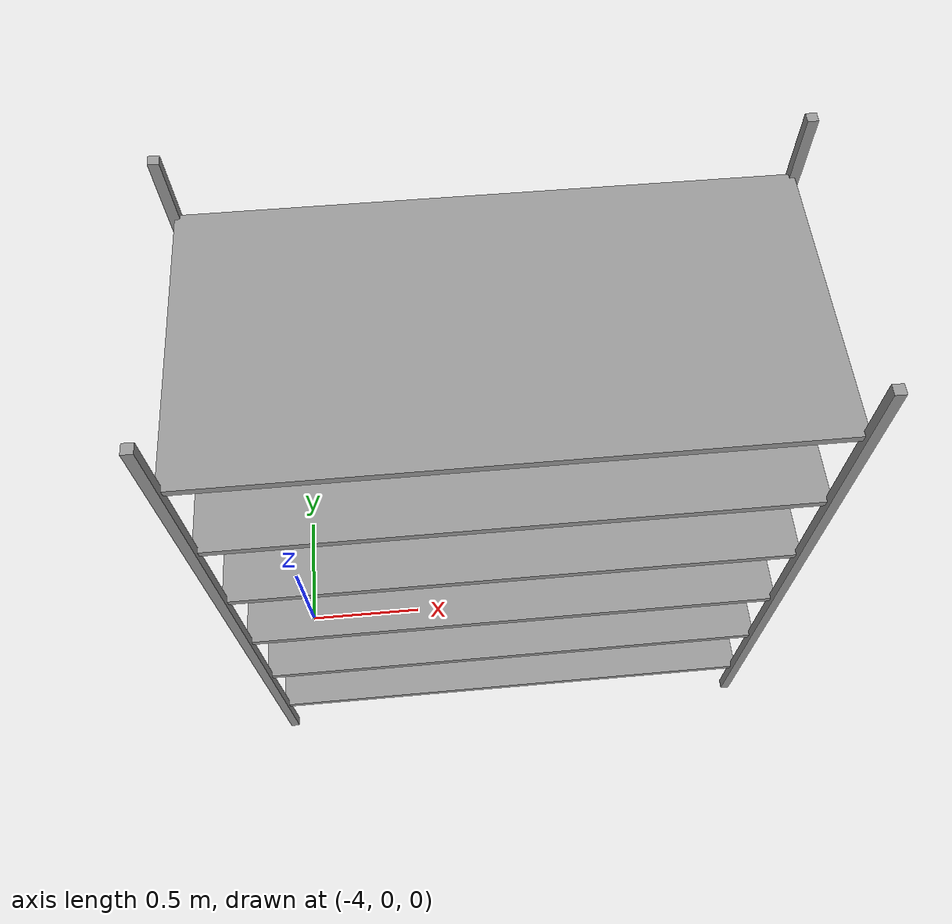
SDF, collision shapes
<sdf version="1.6">
 <model name="shelves">
  <model name="shelf_0">
   <link name="link_1">
    <inertial>
     <mass>1</mass>
     <inertia>
      <ixx>0.166667</ixx>
      <ixy>0</ixy>
      <ixz>0</ixz>
      <iyy>0.166667</iyy>
      <iyz>0</iyz>
      <izz>0.166667</izz>
     </inertia>
    </inertial>
    <visual name="ModelPreview_2::link_1::visual_6">
     <pose>1 0.5 0 0 -0 0</pose>
     <geometry><mesh><uri>model://shelf/model/2-5mDirek.stl</uri><scale>0.001 0.001 0.001</scale></mesh></geometry>
     <material>
      <lighting>1</lighting>
      <script><uri>file://media/materials/scripts/gazebo.material</uri><name>Gazebo/Grey</name></script>
      <shader type="vertex"><normal_map>__default__</normal_map></shader>
      <ambient>0.3 0.3 0.3 1</ambient>
      <diffuse>0.7 0.7 0.7 1</diffuse>
      <specular>0.01 0.01 0.01 1</specular>
      <emissive>0 0 0 1</emissive>
     </material>
    </visual>
    <visual name="ModelPreview_2::link_1::visual_7">
     <pose>-1 0.5 0 0 -0 0</pose>
     <geometry><mesh><uri>model://shelf/model/2-5mDirek.stl</uri><scale>0.001 0.001 0.001</scale></mesh></geometry>
     <material>
      <lighting>1</lighting>
      <script><uri>file://media/materials/scripts/gazebo.material</uri><name>Gazebo/Grey</name></script>
      <shader type="vertex"><normal_map>__default__</normal_map></shader>
      <ambient>0.3 0.3 0.3 1</ambient>
      <diffuse>0.7 0.7 0.7 1</diffuse>
      <specular>0.01 0.01 0.01 1</specular>
      <emissive>0 0 0 1</emissive>
     </material>
    </visual>
    <visual name="ModelPreview_2::link_1::visual_4">
     <pose>0 0 1.85 0 -0 0</pose>
     <geometry><box><size>2 1 0.025</size></box></geometry>
     <material>
      <lighting>1</lighting>
      <script><uri>file://media/materials/scripts/gazebo.material</uri><name>Gazebo/WoodFloor</name></script>
      <shader type="vertex"><normal_map>__default__</normal_map></shader>
      <ambient>0.3 0.3 0.3 1</ambient>
      <diffuse>0.7 0.7 0.7 1</diffuse>
      <specular>0.01 0.01 0.01 1</specular>
      <emissive>0 0 0 1</emissive>
     </material>
    </visual>
    <visual name="ModelPreview_2::link_1::visual_5">
     <pose>0 0 2.25 0 -0 0</pose>
     <geometry><box><size>2 1 0.025</size></box></geometry>
     <material>
      <lighting>1</lighting>
      <script><uri>file://media/materials/scripts/gazebo.material</uri><name>Gazebo/WoodFloor</name></script>
      <shader type="vertex"><normal_map>__default__</normal_map></shader>
      <ambient>0.3 0.3 0.3 1</ambient>
      <diffuse>0.7 0.7 0.7 1</diffuse>
      <specular>0.01 0.01 0.01 1</specular>
      <emissive>0 0 0 1</emissive>
     </material>
    </visual>
    <visual name="ModelPreview_2::link_1::visual_3">
     <pose>0 0 1.45 0 -0 0</pose>
     <geometry><box><size>2 1 0.025</size></box></geometry>
     <material>
      <lighting>1</lighting>
      <script><uri>file://media/materials/scripts/gazebo.material</uri><name>Gazebo/WoodFloor</name></script>
      <shader type="vertex"><normal_map>__default__</normal_map></shader>
      <ambient>0.3 0.3 0.3 1</ambient>
      <diffuse>0.7 0.7 0.7 1</diffuse>
      <specular>0.01 0.01 0.01 1</specular>
      <emissive>0 0 0 1</emissive>
     </material>
    </visual>
    <visual name="ModelPreview_2::link_1::visual_1">
     <pose>0 0 0.65 0 -0 0</pose>
     <geometry><box><size>2 1 0.025</size></box></geometry>
     <material>
      <lighting>1</lighting>
      <script><uri>file://media/materials/scripts/gazebo.material</uri><name>Gazebo/WoodFloor</name></script>
      <shader type="vertex"><normal_map>__default__</normal_map></shader>
      <ambient>0.3 0.3 0.3 1</ambient>
      <diffuse>0.7 0.7 0.7 1</diffuse>
      <specular>0.01 0.01 0.01 1</specular>
      <emissive>0 0 0 1</emissive>
     </material>
    </visual>
    <visual name="visual">
     <pose>0 0 0.25 0 -0 0</pose>
     <geometry><box><size>2 1 0.025</size></box></geometry>
     <material>
      <lighting>1</lighting>
      <script><uri>file://media/materials/scripts/gazebo.material</uri><name>Gazebo/WoodFloor</name></script>
      <shader type="vertex"><normal_map>__default__</normal_map></shader>
      <ambient>0.3 0.3 0.3 1</ambient>
      <diffuse>0.7 0.7 0.7 1</diffuse>
      <specular>0.01 0.01 0.01 1</specular>
      <emissive>0 0 0 1</emissive>
     </material>
    </visual>
    <visual name="ModelPreview_2::link_1::visual_2">
     <pose>0 0 1.05 0 -0 0</pose>
     <geometry><box><size>2 1 0.025</size></box></geometry>
     <material>
      <lighting>1</lighting>
      <script><uri>file://media/materials/scripts/gazebo.material</uri><name>Gazebo/WoodFloor</name></script>
      <shader type="vertex"><normal_map>__default__</normal_map></shader>
      <ambient>0.3 0.3 0.3 1</ambient>
      <diffuse>0.7 0.7 0.7 1</diffuse>
      <specular>0.01 0.01 0.01 1</specular>
      <emissive>0 0 0 1</emissive>
     </material>
    </visual>
    <visual name="ModelPreview_2::link_1::visual_8">
     <pose>1 -0.5 0 0 -0 0</pose>
     <geometry><mesh><uri>model://shelf/model/2-5mDirek.stl</uri><scale>0.001 0.001 0.001</scale></mesh></geometry>
     <material>
      <lighting>1</lighting>
      <script><uri>file://media/materials/scripts/gazebo.material</uri><name>Gazebo/Grey</name></script>
      <shader type="vertex"><normal_map>__default__</normal_map></shader>
      <ambient>0.3 0.3 0.3 1</ambient>
      <diffuse>0.7 0.7 0.7 1</diffuse>
      <specular>0.01 0.01 0.01 1</specular>
      <emissive>0 0 0 1</emissive>
     </material>
    </visual>
    <visual name="ModelPreview_2::link_1::visual_9">
     <pose>-1 -0.5 0 0 -0 0</pose>
     <geometry><mesh><uri>model://shelf/model/2-5mDirek.stl</uri><scale>0.001 0.001 0.001</scale></mesh></geometry>
     <material>
      <lighting>1</lighting>
      <script><uri>file://media/materials/scripts/gazebo.material</uri><name>Gazebo/Grey</name></script>
      <shader type="vertex"><normal_map>__default__</normal_map></shader>
      <ambient>0.3 0.3 0.3 1</ambient>
      <diffuse>0.7 0.7 0.7 1</diffuse>
      <specular>0.01 0.01 0.01 1</specular>
      <emissive>0 0 0 1</emissive>
     </material>
    </visual>
    <collision name="collision_7">
     <pose>1 -0.5 1.25 0 -0 0</pose>
     <geometry><box><size>0.035 0.035 2.5</size></box></geometry>
     <surface>
      <friction>
       <ode><mu>1</mu><mu2>1</mu2><fdir1>0 0 0</fdir1><slip1>0</slip1><slip2>0</slip2></ode>
       <torsional>
        <coefficient>1</coefficient>
        <patch_radius>0</patch_radius>
        <surface_radius>0</surface_radius>
        <use_patch_radius>1</use_patch_radius>
        <ode><slip>0</slip></ode>
       </torsional>
      </friction>
      <bounce><restitution_coefficient>0</restitution_coefficient><threshold>1e+06</threshold></bounce>
      <contact>
       <collide_without_contact>0</collide_without_contact>
       <collide_without_contact_bitmask>1</collide_without_contact_bitmask>
       <collide_bitmask>1</collide_bitmask>
       <ode>
        <soft_cfm>0</soft_cfm>
        <soft_erp>0.2</soft_erp>
        <kp>1e+13</kp>
        <kd>1</kd>
        <max_vel>0.01</max_vel>
        <min_depth>0</min_depth>
       </ode>
       <bullet>
        <split_impulse>1</split_impulse>
        <split_impulse_penetration_threshold>-0.01</split_impulse_penetration_threshold>
        <soft_cfm>0</soft_cfm>
        <soft_erp>0.2</soft_erp>
        <kp>1e+13</kp>
        <kd>1</kd>
       </bullet>
      </contact>
     </surface>
    </collision>
    <collision name="collision_6">
     <pose>1 0.5 1.25 0 -0 0</pose>
     <geometry><box><size>0.035 0.035 2.5</size></box></geometry>
     <surface>
      <friction>
       <ode><mu>1</mu><mu2>1</mu2><fdir1>0 0 0</fdir1><slip1>0</slip1><slip2>0</slip2></ode>
       <torsional>
        <coefficient>1</coefficient>
        <patch_radius>0</patch_radius>
        <surface_radius>0</surface_radius>
        <use_patch_radius>1</use_patch_radius>
        <ode><slip>0</slip></ode>
       </torsional>
      </friction>
      <bounce><restitution_coefficient>0</restitution_coefficient><threshold>1e+06</threshold></bounce>
      <contact>
       <collide_without_contact>0</collide_without_contact>
       <collide_without_contact_bitmask>1</collide_without_contact_bitmask>
       <collide_bitmask>1</collide_bitmask>
       <ode>
        <soft_cfm>0</soft_cfm>
        <soft_erp>0.2</soft_erp>
        <kp>1e+13</kp>
        <kd>1</kd>
        <max_vel>0.01</max_vel>
        <min_depth>0</min_depth>
       </ode>
       <bullet>
        <split_impulse>1</split_impulse>
        <split_impulse_penetration_threshold>-0.01</split_impulse_penetration_threshold>
        <soft_cfm>0</soft_cfm>
        <soft_erp>0.2</soft_erp>
        <kp>1e+13</kp>
        <kd>1</kd>
       </bullet>
      </contact>
     </surface>
    </collision>
    <collision name="collision_2">
     <pose>0 0 1.05 0 -0 0</pose>
     <geometry><box><size>2 1 0.025</size></box></geometry>
     <surface>
      <friction>
       <ode><mu>1</mu><mu2>1</mu2><fdir1>0 0 0</fdir1><slip1>0</slip1><slip2>0</slip2></ode>
       <torsional>
        <coefficient>1</coefficient>
        <patch_radius>0</patch_radius>
        <surface_radius>0</surface_radius>
        <use_patch_radius>1</use_patch_radius>
        <ode><slip>0</slip></ode>
       </torsional>
      </friction>
      <bounce><restitution_coefficient>0</restitution_coefficient><threshold>1e+06</threshold></bounce>
      <contact>
       <collide_without_contact>0</collide_without_contact>
       <collide_without_contact_bitmask>1</collide_without_contact_bitmask>
       <collide_bitmask>1</collide_bitmask>
       <ode>
        <soft_cfm>0</soft_cfm>
        <soft_erp>0.2</soft_erp>
        <kp>1e+13</kp>
        <kd>1</kd>
        <max_vel>0.01</max_vel>
        <min_depth>0</min_depth>
       </ode>
       <bullet>
        <split_impulse>1</split_impulse>
        <split_impulse_penetration_threshold>-0.01</split_impulse_penetration_threshold>
        <soft_cfm>0</soft_cfm>
        <soft_erp>0.2</soft_erp>
        <kp>1e+13</kp>
        <kd>1</kd>
       </bullet>
      </contact>
     </surface>
    </collision>
    <collision name="collision_8">
     <pose>-1 0.5 1.25 0 -0 0</pose>
     <geometry><box><size>0.035 0.035 2.5</size></box></geometry>
     <surface>
      <friction>
       <ode><mu>1</mu><mu2>1</mu2><fdir1>0 0 0</fdir1><slip1>0</slip1><slip2>0</slip2></ode>
       <torsional>
        <coefficient>1</coefficient>
        <patch_radius>0</patch_radius>
        <surface_radius>0</surface_radius>
        <use_patch_radius>1</use_patch_radius>
        <ode><slip>0</slip></ode>
       </torsional>
      </friction>
      <bounce><restitution_coefficient>0</restitution_coefficient><threshold>1e+06</threshold></bounce>
      <contact>
       <collide_without_contact>0</collide_without_contact>
       <collide_without_contact_bitmask>1</collide_without_contact_bitmask>
       <collide_bitmask>1</collide_bitmask>
       <ode>
        <soft_cfm>0</soft_cfm>
        <soft_erp>0.2</soft_erp>
        <kp>1e+13</kp>
        <kd>1</kd>
        <max_vel>0.01</max_vel>
        <min_depth>0</min_depth>
       </ode>
       <bullet>
        <split_impulse>1</split_impulse>
        <split_impulse_penetration_threshold>-0.01</split_impulse_penetration_threshold>
        <soft_cfm>0</soft_cfm>
        <soft_erp>0.2</soft_erp>
        <kp>1e+13</kp>
        <kd>1</kd>
       </bullet>
      </contact>
     </surface>
    </collision>
    <collision name="collision_4">
     <pose>0 0 1.85 0 -0 0</pose>
     <geometry><box><size>2 1 0.025</size></box></geometry>
     <surface>
      <friction>
       <ode><mu>1</mu><mu2>1</mu2><fdir1>0 0 0</fdir1><slip1>0</slip1><slip2>0</slip2></ode>
       <torsional>
        <coefficient>1</coefficient>
        <patch_radius>0</patch_radius>
        <surface_radius>0</surface_radius>
        <use_patch_radius>1</use_patch_radius>
        <ode><slip>0</slip></ode>
       </torsional>
      </friction>
      <bounce><restitution_coefficient>0</restitution_coefficient><threshold>1e+06</threshold></bounce>
      <contact>
       <collide_without_contact>0</collide_without_contact>
       <collide_without_contact_bitmask>1</collide_without_contact_bitmask>
       <collide_bitmask>1</collide_bitmask>
       <ode>
        <soft_cfm>0</soft_cfm>
        <soft_erp>0.2</soft_erp>
        <kp>1e+13</kp>
        <kd>1</kd>
        <max_vel>0.01</max_vel>
        <min_depth>0</min_depth>
       </ode>
       <bullet>
        <split_impulse>1</split_impulse>
        <split_impulse_penetration_threshold>-0.01</split_impulse_penetration_threshold>
        <soft_cfm>0</soft_cfm>
        <soft_erp>0.2</soft_erp>
        <kp>1e+13</kp>
        <kd>1</kd>
       </bullet>
      </contact>
     </surface>
    </collision>
    <collision name="collision_1">
     <pose>0 0 0.65 0 -0 0</pose>
     <geometry><box><size>2 1 0.025</size></box></geometry>
     <surface>
      <friction>
       <ode><mu>1</mu><mu2>1</mu2><fdir1>0 0 0</fdir1><slip1>0</slip1><slip2>0</slip2></ode>
       <torsional>
        <coefficient>1</coefficient>
        <patch_radius>0</patch_radius>
        <surface_radius>0</surface_radius>
        <use_patch_radius>1</use_patch_radius>
        <ode><slip>0</slip></ode>
       </torsional>
      </friction>
      <bounce><restitution_coefficient>0</restitution_coefficient><threshold>1e+06</threshold></bounce>
      <contact>
       <collide_without_contact>0</collide_without_contact>
       <collide_without_contact_bitmask>1</collide_without_contact_bitmask>
       <collide_bitmask>1</collide_bitmask>
       <ode>
        <soft_cfm>0</soft_cfm>
        <soft_erp>0.2</soft_erp>
        <kp>1e+13</kp>
        <kd>1</kd>
        <max_vel>0.01</max_vel>
        <min_depth>0</min_depth>
       </ode>
       <bullet>
        <split_impulse>1</split_impulse>
        <split_impulse_penetration_threshold>-0.01</split_impulse_penetration_threshold>
        <soft_cfm>0</soft_cfm>
        <soft_erp>0.2</soft_erp>
        <kp>1e+13</kp>
        <kd>1</kd>
       </bullet>
      </contact>
     </surface>
    </collision>
    <collision name="collision_3">
     <pose>0 0 1.45 0 -0 0</pose>
     <geometry><box><size>2 1 0.025</size></box></geometry>
     <surface>
      <friction>
       <ode><mu>1</mu><mu2>1</mu2><fdir1>0 0 0</fdir1><slip1>0</slip1><slip2>0</slip2></ode>
       <torsional>
        <coefficient>1</coefficient>
        <patch_radius>0</patch_radius>
        <surface_radius>0</surface_radius>
        <use_patch_radius>1</use_patch_radius>
        <ode><slip>0</slip></ode>
       </torsional>
      </friction>
      <bounce><restitution_coefficient>0</restitution_coefficient><threshold>1e+06</threshold></bounce>
      <contact>
       <collide_without_contact>0</collide_without_contact>
       <collide_without_contact_bitmask>1</collide_without_contact_bitmask>
       <collide_bitmask>1</collide_bitmask>
       <ode>
        <soft_cfm>0</soft_cfm>
        <soft_erp>0.2</soft_erp>
        <kp>1e+13</kp>
        <kd>1</kd>
        <max_vel>0.01</max_vel>
        <min_depth>0</min_depth>
       </ode>
       <bullet>
        <split_impulse>1</split_impulse>
        <split_impulse_penetration_threshold>-0.01</split_impulse_penetration_threshold>
        <soft_cfm>0</soft_cfm>
        <soft_erp>0.2</soft_erp>
        <kp>1e+13</kp>
        <kd>1</kd>
       </bullet>
      </contact>
     </surface>
    </collision>
    <collision name="collision_5">
     <pose>0 0 2.25 0 -0 0</pose>
     <geometry><box><size>2 1 0.025</size></box></geometry>
     <surface>
      <friction>
       <ode><mu>1</mu><mu2>1</mu2><fdir1>0 0 0</fdir1><slip1>0</slip1><slip2>0</slip2></ode>
       <torsional>
        <coefficient>1</coefficient>
        <patch_radius>0</patch_radius>
        <surface_radius>0</surface_radius>
        <use_patch_radius>1</use_patch_radius>
        <ode><slip>0</slip></ode>
       </torsional>
      </friction>
      <bounce><restitution_coefficient>0</restitution_coefficient><threshold>1e+06</threshold></bounce>
      <contact>
       <collide_without_contact>0</collide_without_contact>
       <collide_without_contact_bitmask>1</collide_without_contact_bitmask>
       <collide_bitmask>1</collide_bitmask>
       <ode>
        <soft_cfm>0</soft_cfm>
        <soft_erp>0.2</soft_erp>
        <kp>1e+13</kp>
        <kd>1</kd>
        <max_vel>0.01</max_vel>
        <min_depth>0</min_depth>
       </ode>
       <bullet>
        <split_impulse>1</split_impulse>
        <split_impulse_penetration_threshold>-0.01</split_impulse_penetration_threshold>
        <soft_cfm>0</soft_cfm>
        <soft_erp>0.2</soft_erp>
        <kp>1e+13</kp>
        <kd>1</kd>
       </bullet>
      </contact>
     </surface>
    </collision>
    <collision name="collision">
     <pose>0 0 0.25 0 -0 0</pose>
     <geometry><box><size>2 1 0.025</size></box></geometry>
     <surface>
      <friction>
       <ode><mu>1</mu><mu2>1</mu2><fdir1>0 0 0</fdir1><slip1>0</slip1><slip2>0</slip2></ode>
       <torsional>
        <coefficient>1</coefficient>
        <patch_radius>0</patch_radius>
        <surface_radius>0</surface_radius>
        <use_patch_radius>1</use_patch_radius>
        <ode><slip>0</slip></ode>
       </torsional>
      </friction>
      <bounce><restitution_coefficient>0</restitution_coefficient><threshold>1e+06</threshold></bounce>
      <contact>
       <collide_without_contact>0</collide_without_contact>
       <collide_without_contact_bitmask>1</collide_without_contact_bitmask>
       <collide_bitmask>1</collide_bitmask>
       <ode>
        <soft_cfm>0</soft_cfm>
        <soft_erp>0.2</soft_erp>
        <kp>1e+13</kp>
        <kd>1</kd>
        <max_vel>0.01</max_vel>
        <min_depth>0</min_depth>
       </ode>
       <bullet>
        <split_impulse>1</split_impulse>
        <split_impulse_penetration_threshold>-0.01</split_impulse_penetration_threshold>
        <soft_cfm>0</soft_cfm>
        <soft_erp>0.2</soft_erp>
        <kp>1e+13</kp>
        <kd>1</kd>
       </bullet>
      </contact>
     </surface>
    </collision>
    <collision name="collision_9">
     <pose>-1 -0.5 1.25 0 -0 0</pose>
     <geometry><box><size>0.035 0.035 2.5</size></box></geometry>
     <surface>
      <friction>
       <ode><mu>1</mu><mu2>1</mu2><fdir1>0 0 0</fdir1><slip1>0</slip1><slip2>0</slip2></ode>
       <torsional>
        <coefficient>1</coefficient>
        <patch_radius>0</patch_radius>
        <surface_radius>0</surface_radius>
        <use_patch_radius>1</use_patch_radius>
        <ode><slip>0</slip></ode>
       </torsional>
      </friction>
      <bounce><restitution_coefficient>0</restitution_coefficient><threshold>1e+06</threshold></bounce>
      <contact>
       <collide_without_contact>0</collide_without_contact>
       <collide_without_contact_bitmask>1</collide_without_contact_bitmask>
       <collide_bitmask>1</collide_bitmask>
       <ode>
        <soft_cfm>0</soft_cfm>
        <soft_erp>0.2</soft_erp>
        <kp>1e+13</kp>
        <kd>1</kd>
        <max_vel>0.01</max_vel>
        <min_depth>0</min_depth>
       </ode>
       <bullet>
        <split_impulse>1</split_impulse>
        <split_impulse_penetration_threshold>-0.01</split_impulse_penetration_threshold>
        <soft_cfm>0</soft_cfm>
        <soft_erp>0.2</soft_erp>
        <kp>1e+13</kp>
        <kd>1</kd>
       </bullet>
      </contact>
     </surface>
    </collision>
   </link>
   <static>1</static>
   <pose>-3.09011 -0.000869 0 0 -0 0</pose>
  </model>
  <static>1</static>
 </model>
</sdf>
